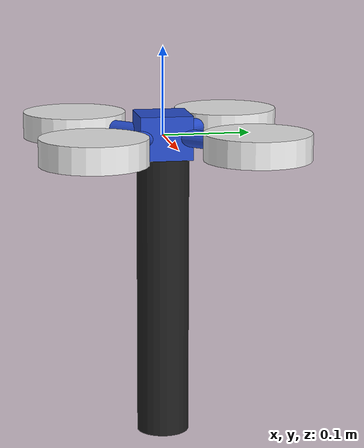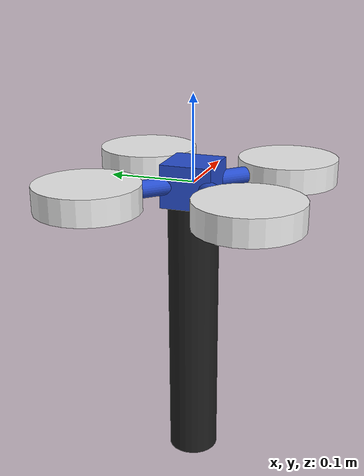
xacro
<robot xmlns:xacro="http://www.ros.org/wiki/xacro" name="example">

  <xacro:macro name="gazebo_material" params="ref color">
    <gazebo reference="${ref}">
      <material>Gazebo/${color}</material>
    </gazebo>
  </xacro:macro>

  <xacro:macro name="gazebo_kinematic" params="ref">
    <gazebo reference="${ref}">
      <gravity>false</gravity>
      <kinematic>true</kinematic>
    </gazebo>
  </xacro:macro>

  <link name="base_origin"/>

  <link name="base_link">
    <visual>
      <origin xyz="0 0 0" rpy="0 0 0"/>
      <geometry>
        <box size="0.06 0.06 0.05"/>
      </geometry>
    </visual>
    <collision>
      <origin xyz="0 0 0" rpy="0 0 0"/>
      <geometry>
        <box size="0.06 0.06 0.05"/>
      </geometry>
    </collision>

    <inertial>
      <mass value="1e-5" />
      <origin xyz="0 0 0" rpy="0 0 0"/>
      <inertia ixx="1e-6" ixy="0" ixz="0" iyy="1e-6" iyz="0" izz="1e-6" />
    </inertial>
  </link>

  <joint name="base_link_joint" type="fixed">
    <origin xyz="0 0 0" rpy="0 0 0"/>
    <parent link="base_origin"/>
    <child link="base_link"/>
  </joint>

  <link name="lidar_holder">
    <visual>
      <origin xyz="0 0 0" rpy="0 0 0"/>
      <geometry>
        <cylinder radius="0.03" length="0.35"/>
      </geometry>
    </visual>
    <collision>
      <origin xyz="0 0 0" rpy="0 0 0"/>
      <geometry>
        <cylinder radius="0.03" length="0.35"/>
      </geometry>
    </collision>

    <inertial>
      <mass value="1e-5" />
      <origin xyz="0 0 0" rpy="0 0 0"/>
      <inertia ixx="1e-6" ixy="0" ixz="0" iyy="1e-6" iyz="0" izz="1e-6" />
    </inertial>
  </link>

  <joint name="lidar_holder_joint" type="fixed">
    <origin xyz="0.0 0 -0.175" rpy="0 0 0"/>
    <parent link="base_origin"/>
    <child link="lidar_holder"/>
  </joint>

  <link name="left_arm_link">
    <visual>
      <origin xyz="0 0 0" rpy="0 0 0"/>
      <geometry>
        <cylinder radius="0.01" length="0.2"/>
      </geometry>
    </visual>
    <collision>
      <origin xyz="0 0 0" rpy="0 0 0"/>
      <geometry>
        <cylinder radius="0.01" length="0.2"/>
      </geometry>
    </collision>

    <inertial>
      <mass value="1e-5" />
      <origin xyz="0 0 0" rpy="0 0 0"/>
      <inertia ixx="1e-6" ixy="0" ixz="0" iyy="1e-6" iyz="0" izz="1e-6" />
    </inertial>
  </link>

  <joint name="left_arm_joint" type="fixed">
    <origin xyz="0 0 0" rpy="1.57 0 0.785"/>
    <parent link="base_link"/>
    <child link="left_arm_link"/>
  </joint>

  <link name="right_arm_link">
    <visual>
      <origin xyz="0 0 0" rpy="0 0 0"/>
      <geometry>
        <cylinder radius="0.01" length="0.2"/>
      </geometry>
    </visual>
    <collision>
      <origin xyz="0 0 0" rpy="0 0 0"/>
      <geometry>
        <cylinder radius="0.01" length="0.2"/>
      </geometry>
    </collision>

    <inertial>
      <mass value="1e-5" />
      <origin xyz="0 0 0" rpy="0 0 0"/>
      <inertia ixx="1e-6" ixy="0" ixz="0" iyy="1e-6" iyz="0" izz="1e-6" />
    </inertial>
  </link>

  <joint name="right_arm_joint" type="fixed">
    <origin xyz="0 0 0" rpy="1.57 0 -0.785"/>
    <parent link="base_link"/>
    <child link="right_arm_link"/>
  </joint>

  <link name="left_front_rotor">
    <visual>
      <origin xyz="0 0 0" rpy="0 0 0"/>
      <geometry>
        <cylinder radius="0.06" length="0.03"/>
      </geometry>
    </visual>
    <collision>
      <origin xyz="0 0 0" rpy="0 0 0"/>
      <geometry>
        <cylinder radius="0.06" length="0.03"/>
      </geometry>
    </collision>

    <inertial>
      <mass value="1e-5" />
      <origin xyz="0 0 0" rpy="0 0 0"/>
      <inertia ixx="1e-6" ixy="0" ixz="0" iyy="1e-6" iyz="0" izz="1e-6" />
    </inertial>
  </link>

  <joint name="left_front_joint" type="fixed">
    <origin xyz="0.09 -0.09 0" rpy="0 0 0"/>
    <parent link="base_link"/>
    <child link="left_front_rotor"/>
  </joint>

  <link name="right_front_rotor">
    <visual>
      <origin xyz="0 0 0" rpy="0 0 0"/>
      <geometry>
        <cylinder radius="0.06" length="0.03"/>
      </geometry>
    </visual>
    <collision>
      <origin xyz="0 0 0" rpy="0 0 0"/>
      <geometry>
        <cylinder radius="0.06" length="0.03"/>
      </geometry>
    </collision>

    <inertial>
      <mass value="1e-5" />
      <origin xyz="0 0 0" rpy="0 0 0"/>
      <inertia ixx="1e-6" ixy="0" ixz="0" iyy="1e-6" iyz="0" izz="1e-6" />
    </inertial>
  </link>

  <joint name="rigth_front_joint" type="fixed">
    <origin xyz="0.09 0.09 0" rpy="0 0 0"/>
    <parent link="base_link"/>
    <child link="right_front_rotor"/>
  </joint>

  <link name="left_rear_rotor">
    <visual>
      <origin xyz="0 0 0" rpy="0 0 0"/>
      <geometry>
        <cylinder radius="0.06" length="0.03"/>
      </geometry>
    </visual>
    <collision>
      <origin xyz="0 0 0" rpy="0 0 0"/>
      <geometry>
        <cylinder radius="0.06" length="0.03"/>
      </geometry>
    </collision>

    <inertial>
      <mass value="1e-5" />
      <origin xyz="0 0 0" rpy="0 0 0"/>
      <inertia ixx="1e-6" ixy="0" ixz="0" iyy="1e-6" iyz="0" izz="1e-6" />
    </inertial>
  </link>

  <joint name="left_rear_joint" type="fixed">
    <origin xyz="-0.09 -0.09 0" rpy="0 0 0"/>
    <parent link="base_link"/>
    <child link="left_rear_rotor"/>
  </joint>

  <link name="right_rear_rotor">
    <visual>
      <origin xyz="0 0 0" rpy="0 0 0"/>
      <geometry>
        <cylinder radius="0.06" length="0.03"/>
      </geometry>
    </visual>
    <collision>
      <origin xyz="0 0 0" rpy="0 0 0"/>
      <geometry>
        <cylinder radius="0.06" length="0.03"/>
      </geometry>
    </collision>

    <inertial>
      <mass value="1e-5" />
      <origin xyz="0 0 0" rpy="0 0 0"/>
      <inertia ixx="1e-6" ixy="0" ixz="0" iyy="1e-6" iyz="0" izz="1e-6" />
    </inertial>
  </link>

  <joint name="right_rear_joint" type="fixed">
    <origin xyz="-0.09 0.09 0" rpy="0 0 0"/>
    <parent link="base_link"/>
    <child link="right_rear_rotor"/>
  </joint>

  <xacro:gazebo_material ref="base_link"         color="Blue" />
  <xacro:gazebo_material ref="left_arm_link"     color="Blue" />
  <xacro:gazebo_material ref="right_arm_link"     color="Blue" />
  <xacro:gazebo_material ref="left_front_rotor"  color="White" />
  <xacro:gazebo_material ref="left_rear_rotor"   color="White" />
  <xacro:gazebo_material ref="right_front_rotor" color="White" />
  <xacro:gazebo_material ref="right_rear_rotor"  color="White" />
  <xacro:gazebo_material ref="lidar_holder"      color="Black" />

  <xacro:gazebo_kinematic ref="base_origin" />
  <xacro:gazebo_kinematic ref="base_link" />
  <xacro:gazebo_kinematic ref="left_arm_link" />
  <xacro:gazebo_kinematic ref="right_arm_link" />
  <xacro:gazebo_kinematic ref="left_front_rotor" />
  <xacro:gazebo_kinematic ref="right_front_rotor" />
  <xacro:gazebo_kinematic ref="left_rear_rotor" />
  <xacro:gazebo_kinematic ref="right_rear_rotor" />
  <xacro:gazebo_kinematic ref="lidar_holder" />

</robot>
